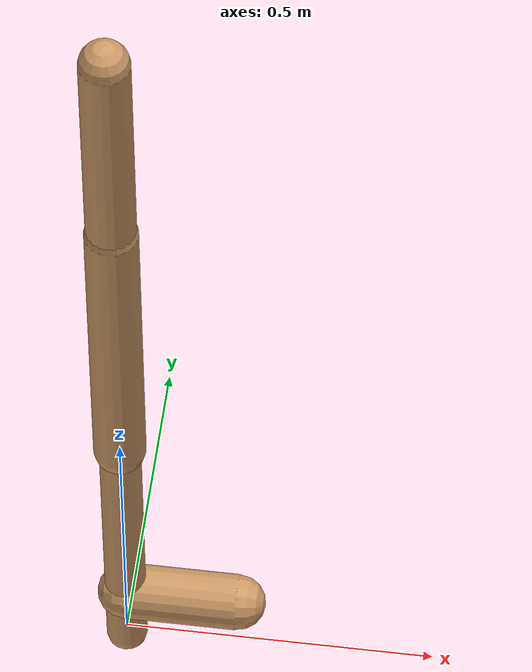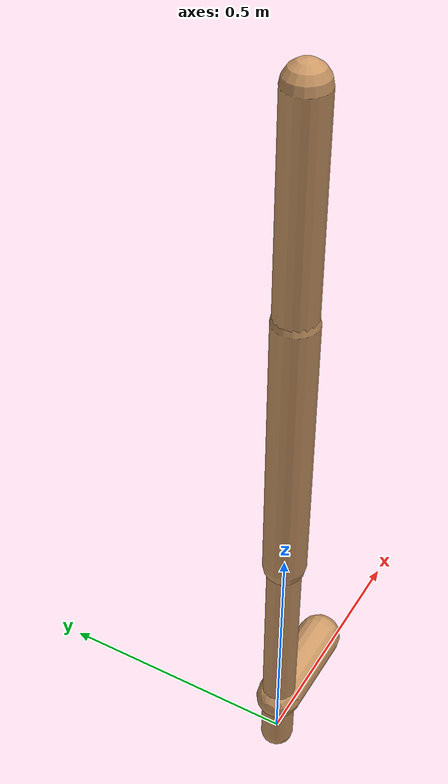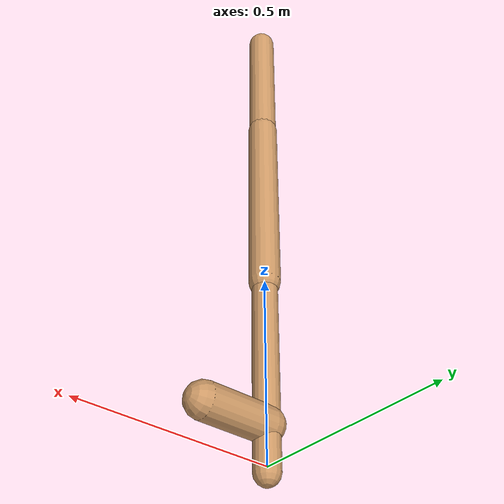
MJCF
<mujoco model="walker2d">
  <compiler angle="degree" coordinate="global" inertiafromgeom="true" />
  <default>
    <joint armature="0.01" damping=".1" limited="true" />
    <geom conaffinity="0" condim="3" contype="1" density="1000" friction="0.8 .1 .1" rgba="0.8 0.6 .4 1" />
  </default>
  <option integrator="RK4" timestep="0.002" />
  <worldbody>

    <body name="torso" pos="0 0 0.21570023454441492">
      <joint armature="0" axis="1 0 0" damping="0" limited="false" name="ignorex" pos="0 0 0" stiffness="0" type="slide" />
      <joint armature="0" axis="0 0 1" damping="0" limited="false" name="ignorez" pos="0 0 0" ref="1.25" stiffness="0" type="slide" />
      <joint armature="0" axis="0 1 0" damping="0" limited="false" name="ignorey" pos="0 0 0" stiffness="0" type="hinge" />
      <geom fromto="0 0 1.45 0 0 1.05" name="torso_geom" size="0.03910638584969658" type="capsule" />
      <body name="thigh">
        <joint axis="0 -1 0" name="thigh_joint" pos="0 0 1.05" range="-150 0" type="hinge" />
        <geom fromto="0.0 0.0 1.05 0.0 0.0 0.49782620468948763" name="thigh_geom" size="0.04166398191128143" type="capsule" />
        <body name="leg" pos="0.0 0.0 -0.10217379531051235">
          <joint axis="0 -1 0" name="leg_joint" pos="0 0 0.6" range="-150 0" type="hinge" />
          <geom fromto="0.0 0.0 0.6 0.0 0.0 -0.013526439233902579" name="leg_geom" size="0.033331185529025135" type="capsule" />
          <body name="foot" pos="0.0 0.0 -0.11352643923390258">
            <joint axis="0 -1 0" name="foot_joint" pos="0 0 0.1" range="-45 45" type="hinge" />
            <geom fromto="0.0 0.0 0.1 0.18245745467144409 0.0 0.1" name="foot_geom" size="0.04530689313807356" type="capsule" />
          </body>
        </body>
      </body>

      <body name="thigh_left">
        <joint axis="0 -1 0" name="thigh_left_joint" pos="0 0 1.05" range="-150 0" type="hinge" />
        <geom fromto="0.0 0.0 1.05 0.0 0.0 0.49782620468948763" name="thigh_left_geom" rgba=".7 .3 .6 1" size="0.04166398191128143" type="capsule" />
        <body name="leg_left" pos="0.0 0.0 -0.10217379531051235">
          <joint axis="0 -1 0" name="leg_left_joint" pos="0 0 0.6" range="-150 0" type="hinge" />
          <geom fromto="0.0 0.0 0.6 0.0 0.0 -0.013526439233902579" name="leg_left_geom" rgba=".7 .3 .6 1" size="0.033331185529025135" type="capsule" />
          <body name="foot_left" pos="0.0 0.0 -0.11352643923390258">
            <joint axis="0 -1 0" name="foot_left_joint" pos="0 0 0.1" range="-45 45" type="hinge" />
            <geom fromto="0.0 0.0 0.1 0.18245745467144409 0.0 0.1" name="foot_left_geom" rgba=".7 .3 .6 1" size="0.04530689313807356" type="capsule" />
          </body>
        </body>
      </body>
    </body>
  </worldbody>
  <actuator>

    <motor ctrllimited="true" ctrlrange="-1.0 1.0" gear="100" joint="thigh_joint" />
    <motor ctrllimited="true" ctrlrange="-1.0 1.0" gear="100" joint="leg_joint" />
    <motor ctrllimited="true" ctrlrange="-1.0 1.0" gear="100" joint="foot_joint" />
    <motor ctrllimited="true" ctrlrange="-1.0 1.0" gear="100" joint="thigh_left_joint" />
    <motor ctrllimited="true" ctrlrange="-1.0 1.0" gear="100" joint="leg_left_joint" />
    <motor ctrllimited="true" ctrlrange="-1.0 1.0" gear="100" joint="foot_left_joint" />

  </actuator>
</mujoco>
